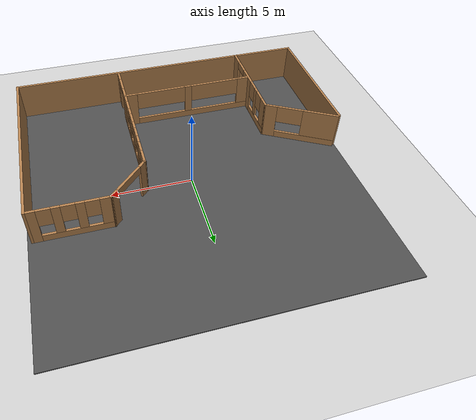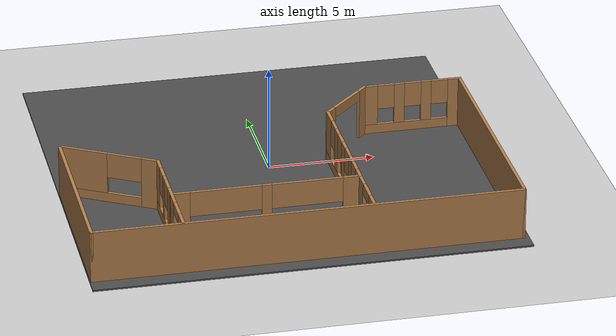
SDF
<sdf version="1.6">
 <world name="default">
  <model name="ground_plane">
   <static>1</static>
   <link name="link">
    <collision name="collision">
     <geometry><plane><normal>0 0 1</normal><size>100 100</size></plane></geometry>
     <surface><friction><ode><mu>100</mu><mu2>50</mu2></ode></friction></surface>
    </collision>
    <visual name="visual">
     <cast_shadows>0</cast_shadows>
     <geometry><plane><normal>0 0 1</normal><size>100 100</size></plane></geometry>
     <material>
      <script><uri>file://media/materials/scripts/gazebo.material</uri><name>Gazebo/Grey</name></script>
     </material>
    </visual>
   </link>
  </model>
  <model name="Robocup">
   <pose>-0.0925 -3.37243 0 0 -0 0</pose>
   <link name="Wall_13">
    <collision name="Wall_13_Collision">
     <geometry><box><size>8.5 0.15 2.5</size></box></geometry>
     <pose>0 0 1.25 0 -0 0</pose>
    </collision>
    <visual name="Wall_13_Visual">
     <pose>0 0 1.25 0 -0 0</pose>
     <geometry><box><size>8.5 0.15 2.5</size></box></geometry>
     <material>
      <script><uri>file://media/materials/scripts/gazebo.material</uri><name>Gazebo/Wood</name></script>
      <ambient>1 1 1 1</ambient>
     </material>
     <meta><layer>0</layer></meta>
    </visual>
    <pose>-9.8 -1.64053 0 0 0 -1.5708</pose>
   </link>
   <link name="Wall_15">
    <collision name="Wall_15_Collision">
     <geometry><box><size>19.75 0.15 2.5</size></box></geometry>
     <pose>0 0 1.25 0 -0 0</pose>
    </collision>
    <visual name="Wall_15_Visual">
     <pose>0 0 1.25 0 -0 0</pose>
     <geometry><box><size>19.75 0.15 2.5</size></box></geometry>
     <material>
      <script><uri>file://media/materials/scripts/gazebo.material</uri><name>Gazebo/Wood</name></script>
      <ambient>1 1 1 1</ambient>
     </material>
     <meta><layer>0</layer></meta>
    </visual>
    <pose>0 -5.81553 0 0 -0 0</pose>
   </link>
   <link name="Wall_17">
    <collision name="Wall_17_Collision">
     <geometry><box><size>11.75 0.15 2.5</size></box></geometry>
     <pose>0 0 1.25 0 -0 0</pose>
    </collision>
    <visual name="Wall_17_Visual">
     <pose>0 0 1.25 0 -0 0</pose>
     <geometry><box><size>11.75 0.15 2.5</size></box></geometry>
     <material>
      <script><uri>file://media/materials/scripts/gazebo.material</uri><name>Gazebo/Wood</name></script>
      <ambient>1 1 1 1</ambient>
     </material>
     <meta><layer>0</layer></meta>
    </visual>
    <pose>9.8 -0.015532 0 0 -0 1.5708</pose>
   </link>
   <link name="Wall_18">
    <pose>7.5 5.78447 0 0 -0 3.14159</pose>
    <visual name="Wall_18_Visual_0">
     <pose>-2.04757 0 1.25 0 -0 0</pose>
     <geometry><box><size>0.654861 0.15 2.5</size></box></geometry>
     <material>
      <script><uri>file://media/materials/scripts/gazebo.material</uri><name>Gazebo/Wood</name></script>
      <ambient>1 1 1 1</ambient>
     </material>
     <meta><layer>0</layer></meta>
    </visual>
    <collision name="Wall_18_Collision_0">
     <geometry><box><size>0.654861 0.15 2.5</size></box></geometry>
     <pose>-2.04757 0 1.25 0 -0 0</pose>
    </collision>
    <visual name="Wall_18_Visual_1">
     <pose>0.327431 0 0.25 0 -0 0</pose>
     <geometry><box><size>4.09514 0.15 0.5</size></box></geometry>
     <material>
      <script><uri>file://media/materials/scripts/gazebo.material</uri><name>Gazebo/Wood</name></script>
      <ambient>1 1 1 1</ambient>
     </material>
     <meta><layer>0</layer></meta>
    </visual>
    <collision name="Wall_18_Collision_1">
     <geometry><box><size>4.09514 0.15 0.5</size></box></geometry>
     <pose>0.327431 0 0.25 0 -0 0</pose>
    </collision>
    <visual name="Wall_18_Visual_2">
     <pose>-0.672482 0 1.5 0 -0 0</pose>
     <geometry><box><size>0.495314 0.15 2</size></box></geometry>
     <material>
      <script><uri>file://media/materials/scripts/gazebo.material</uri><name>Gazebo/Wood</name></script>
      <ambient>1 1 1 1</ambient>
     </material>
     <meta><layer>0</layer></meta>
    </visual>
    <collision name="Wall_18_Collision_2">
     <geometry><box><size>0.495314 0.15 2</size></box></geometry>
     <pose>-0.672482 0 1.5 0 -0 0</pose>
    </collision>
    <visual name="Wall_18_Visual_3">
     <pose>0.622832 0 1.5 0 -0 0</pose>
     <geometry><box><size>0.495314 0.15 2</size></box></geometry>
     <material>
      <script><uri>file://media/materials/scripts/gazebo.material</uri><name>Gazebo/Wood</name></script>
      <ambient>1 1 1 1</ambient>
     </material>
     <meta><layer>0</layer></meta>
    </visual>
    <collision name="Wall_18_Collision_3">
     <geometry><box><size>0.495314 0.15 2</size></box></geometry>
     <pose>0.622832 0 1.5 0 -0 0</pose>
    </collision>
    <visual name="Wall_18_Visual_4">
     <pose>2.02275 0 1.5 0 -0 0</pose>
     <geometry><box><size>0.704511 0.15 2</size></box></geometry>
     <material>
      <script><uri>file://media/materials/scripts/gazebo.material</uri><name>Gazebo/Wood</name></script>
      <ambient>1 1 1 1</ambient>
     </material>
     <meta><layer>0</layer></meta>
    </visual>
    <collision name="Wall_18_Collision_4">
     <geometry><box><size>0.704511 0.15 2</size></box></geometry>
     <pose>2.02275 0 1.5 0 -0 0</pose>
    </collision>
    <visual name="Wall_18_Visual_5">
     <pose>-1.32014 0 1.9 0 -0 0</pose>
     <geometry><box><size>0.8 0.15 1.2</size></box></geometry>
     <material>
      <script><uri>file://media/materials/scripts/gazebo.material</uri><name>Gazebo/Wood</name></script>
      <ambient>1 1 1 1</ambient>
     </material>
     <meta><layer>0</layer></meta>
    </visual>
    <collision name="Wall_18_Collision_5">
     <geometry><box><size>0.8 0.15 1.2</size></box></geometry>
     <pose>-1.32014 0 1.9 0 -0 0</pose>
    </collision>
    <visual name="Wall_18_Visual_6">
     <pose>-0.024825 0 1.9 0 -0 0</pose>
     <geometry><box><size>0.8 0.15 1.2</size></box></geometry>
     <material>
      <script><uri>file://media/materials/scripts/gazebo.material</uri><name>Gazebo/Wood</name></script>
      <ambient>1 1 1 1</ambient>
     </material>
     <meta><layer>0</layer></meta>
    </visual>
    <collision name="Wall_18_Collision_6">
     <geometry><box><size>0.8 0.15 1.2</size></box></geometry>
     <pose>-0.024825 0 1.9 0 -0 0</pose>
    </collision>
    <visual name="Wall_18_Visual_7">
     <pose>1.27049 0 1.9 0 -0 0</pose>
     <geometry><box><size>0.8 0.15 1.2</size></box></geometry>
     <material>
      <script><uri>file://media/materials/scripts/gazebo.material</uri><name>Gazebo/Wood</name></script>
      <ambient>1 1 1 1</ambient>
     </material>
     <meta><layer>0</layer></meta>
    </visual>
    <collision name="Wall_18_Collision_7">
     <geometry><box><size>0.8 0.15 1.2</size></box></geometry>
     <pose>1.27049 0 1.9 0 -0 0</pose>
    </collision>
   </link>
   <link name="Wall_22">
    <pose>-1.38838 -2.99714 0 0 -0 3.14159</pose>
    <visual name="Wall_22_Visual_0">
     <pose>-3.95278 0 1.25 0 -0 0</pose>
     <geometry><box><size>0.844442 0.15 2.5</size></box></geometry>
     <material>
      <script><uri>file://media/materials/scripts/gazebo.material</uri><name>Gazebo/Wood</name></script>
      <ambient>1 1 1 1</ambient>
     </material>
     <meta><layer>0</layer></meta>
    </visual>
    <collision name="Wall_22_Collision_0">
     <geometry><box><size>0.844442 0.15 2.5</size></box></geometry>
     <pose>-3.95278 0 1.25 0 -0 0</pose>
    </collision>
    <visual name="Wall_22_Visual_1">
     <pose>0.422221 0 0.25 0 -0 0</pose>
     <geometry><box><size>7.90556 0.15 0.5</size></box></geometry>
     <material>
      <script><uri>file://media/materials/scripts/gazebo.material</uri><name>Gazebo/Wood</name></script>
      <ambient>1 1 1 1</ambient>
     </material>
     <meta><layer>0</layer></meta>
    </visual>
    <collision name="Wall_22_Collision_1">
     <geometry><box><size>7.90556 0.15 0.5</size></box></geometry>
     <pose>0.422221 0 0.25 0 -0 0</pose>
    </collision>
    <visual name="Wall_22_Visual_2">
     <pose>-0.031057 0 1.5 0 -0 0</pose>
     <geometry><box><size>0.449053 0.15 2</size></box></geometry>
     <material>
      <script><uri>file://media/materials/scripts/gazebo.material</uri><name>Gazebo/Wood</name></script>
      <ambient>1 1 1 1</ambient>
     </material>
     <meta><layer>0</layer></meta>
    </visual>
    <collision name="Wall_22_Collision_2">
     <geometry><box><size>0.449053 0.15 2</size></box></geometry>
     <pose>-0.031057 0 1.5 0 -0 0</pose>
    </collision>
    <visual name="Wall_22_Visual_3">
     <pose>3.92172 0 1.5 0 -0 0</pose>
     <geometry><box><size>0.906555 0.15 2</size></box></geometry>
     <material>
      <script><uri>file://media/materials/scripts/gazebo.material</uri><name>Gazebo/Wood</name></script>
      <ambient>1 1 1 1</ambient>
     </material>
     <meta><layer>0</layer></meta>
    </visual>
    <collision name="Wall_22_Collision_3">
     <geometry><box><size>0.906555 0.15 2</size></box></geometry>
     <pose>3.92172 0 1.5 0 -0 0</pose>
    </collision>
    <visual name="Wall_22_Visual_4">
     <pose>-1.89307 0 1.9 0 -0 0</pose>
     <geometry><box><size>3.27497 0.15 1.2</size></box></geometry>
     <material>
      <script><uri>file://media/materials/scripts/gazebo.material</uri><name>Gazebo/Wood</name></script>
      <ambient>1 1 1 1</ambient>
     </material>
     <meta><layer>0</layer></meta>
    </visual>
    <collision name="Wall_22_Collision_4">
     <geometry><box><size>3.27497 0.15 1.2</size></box></geometry>
     <pose>-1.89307 0 1.9 0 -0 0</pose>
    </collision>
    <visual name="Wall_22_Visual_5">
     <pose>1.83096 0 1.9 0 -0 0</pose>
     <geometry><box><size>3.27497 0.15 1.2</size></box></geometry>
     <material>
      <script><uri>file://media/materials/scripts/gazebo.material</uri><name>Gazebo/Wood</name></script>
      <ambient>1 1 1 1</ambient>
     </material>
     <meta><layer>0</layer></meta>
    </visual>
    <collision name="Wall_22_Collision_5">
     <geometry><box><size>3.27497 0.15 1.2</size></box></geometry>
     <pose>1.83096 0 1.9 0 -0 0</pose>
    </collision>
   </link>
   <link name="Wall_26">
    <pose>2.93475 0.272603 0 0 -0 1.5708</pose>
    <visual name="Wall_26_Visual_0">
     <pose>-2.98586 0 1.25 0 -0 0</pose>
     <geometry><box><size>0.718408 0.15 2.5</size></box></geometry>
     <material>
      <script><uri>file://media/materials/scripts/gazebo.material</uri><name>Gazebo/Wood</name></script>
      <ambient>1 1 1 1</ambient>
     </material>
     <meta><layer>0</layer></meta>
    </visual>
    <collision name="Wall_26_Collision_0">
     <geometry><box><size>0.718408 0.15 2.5</size></box></geometry>
     <pose>-2.98586 0 1.25 0 -0 0</pose>
    </collision>
    <visual name="Wall_26_Visual_1">
     <pose>0.359204 0 0.25 0 -0 0</pose>
     <geometry><box><size>5.97173 0.15 0.5</size></box></geometry>
     <material>
      <script><uri>file://media/materials/scripts/gazebo.material</uri><name>Gazebo/Wood</name></script>
      <ambient>1 1 1 1</ambient>
     </material>
     <meta><layer>0</layer></meta>
    </visual>
    <collision name="Wall_26_Collision_1">
     <geometry><box><size>5.97173 0.15 0.5</size></box></geometry>
     <pose>0.359204 0 0.25 0 -0 0</pose>
    </collision>
    <visual name="Wall_26_Visual_2">
     <pose>-1.54474 0 1.5 0 -0 0</pose>
     <geometry><box><size>0.563839 0.15 2</size></box></geometry>
     <material>
      <script><uri>file://media/materials/scripts/gazebo.material</uri><name>Gazebo/Wood</name></script>
      <ambient>1 1 1 1</ambient>
     </material>
     <meta><layer>0</layer></meta>
    </visual>
    <collision name="Wall_26_Collision_2">
     <geometry><box><size>0.563839 0.15 2</size></box></geometry>
     <pose>-1.54474 0 1.5 0 -0 0</pose>
    </collision>
    <visual name="Wall_26_Visual_3">
     <pose>-0.156104 0 1.5 0 -0 0</pose>
     <geometry><box><size>0.613433 0.15 2</size></box></geometry>
     <material>
      <script><uri>file://media/materials/scripts/gazebo.material</uri><name>Gazebo/Wood</name></script>
      <ambient>1 1 1 1</ambient>
     </material>
     <meta><layer>0</layer></meta>
    </visual>
    <collision name="Wall_26_Collision_3">
     <geometry><box><size>0.613433 0.15 2</size></box></geometry>
     <pose>-0.156104 0 1.5 0 -0 0</pose>
    </collision>
    <visual name="Wall_26_Visual_4">
     <pose>1.23253 0 1.5 0 -0 0</pose>
     <geometry><box><size>0.563839 0.15 2</size></box></geometry>
     <material>
      <script><uri>file://media/materials/scripts/gazebo.material</uri><name>Gazebo/Wood</name></script>
      <ambient>1 1 1 1</ambient>
     </material>
     <meta><layer>0</layer></meta>
    </visual>
    <collision name="Wall_26_Collision_4">
     <geometry><box><size>0.563839 0.15 2</size></box></geometry>
     <pose>1.23253 0 1.5 0 -0 0</pose>
    </collision>
    <visual name="Wall_26_Visual_5">
     <pose>2.82976 0 1.5 0 -0 0</pose>
     <geometry><box><size>1.03062 0.15 2</size></box></geometry>
     <material>
      <script><uri>file://media/materials/scripts/gazebo.material</uri><name>Gazebo/Wood</name></script>
      <ambient>1 1 1 1</ambient>
     </material>
     <meta><layer>0</layer></meta>
    </visual>
    <collision name="Wall_26_Collision_5">
     <geometry><box><size>1.03062 0.15 2</size></box></geometry>
     <pose>2.82976 0 1.5 0 -0 0</pose>
    </collision>
    <visual name="Wall_26_Visual_6">
     <pose>-2.22666 0 1.9 0 -0 0</pose>
     <geometry><box><size>0.8 0.15 1.2</size></box></geometry>
     <material>
      <script><uri>file://media/materials/scripts/gazebo.material</uri><name>Gazebo/Wood</name></script>
      <ambient>1 1 1 1</ambient>
     </material>
     <meta><layer>0</layer></meta>
    </visual>
    <collision name="Wall_26_Collision_6">
     <geometry><box><size>0.8 0.15 1.2</size></box></geometry>
     <pose>-2.22666 0 1.9 0 -0 0</pose>
    </collision>
    <visual name="Wall_26_Visual_7">
     <pose>-0.862821 0 1.9 0 -0 0</pose>
     <geometry><box><size>0.8 0.15 1.2</size></box></geometry>
     <material>
      <script><uri>file://media/materials/scripts/gazebo.material</uri><name>Gazebo/Wood</name></script>
      <ambient>1 1 1 1</ambient>
     </material>
     <meta><layer>0</layer></meta>
    </visual>
    <collision name="Wall_26_Collision_7">
     <geometry><box><size>0.8 0.15 1.2</size></box></geometry>
     <pose>-0.862821 0 1.9 0 -0 0</pose>
    </collision>
    <visual name="Wall_26_Visual_8">
     <pose>0.550613 0 1.9 0 -0 0</pose>
     <geometry><box><size>0.8 0.15 1.2</size></box></geometry>
     <material>
      <script><uri>file://media/materials/scripts/gazebo.material</uri><name>Gazebo/Wood</name></script>
      <ambient>1 1 1 1</ambient>
     </material>
     <meta><layer>0</layer></meta>
    </visual>
    <collision name="Wall_26_Collision_8">
     <geometry><box><size>0.8 0.15 1.2</size></box></geometry>
     <pose>0.550613 0 1.9 0 -0 0</pose>
    </collision>
    <visual name="Wall_26_Visual_9">
     <pose>1.91445 0 1.9 0 -0 0</pose>
     <geometry><box><size>0.8 0.15 1.2</size></box></geometry>
     <material>
      <script><uri>file://media/materials/scripts/gazebo.material</uri><name>Gazebo/Wood</name></script>
      <ambient>1 1 1 1</ambient>
     </material>
     <meta><layer>0</layer></meta>
    </visual>
    <collision name="Wall_26_Collision_9">
     <geometry><box><size>0.8 0.15 1.2</size></box></geometry>
     <pose>1.91445 0 1.9 0 -0 0</pose>
    </collision>
   </link>
   <link name="Wall_30">
    <pose>4.06737 4.66341 0 0 -0 0.780266</pose>
    <visual name="Wall_30_Visual_0">
     <pose>-1.36338 0 1.25 0 -0 0</pose>
     <geometry><box><size>0.610486 0.15 2.5</size></box></geometry>
     <material>
      <script><uri>file://media/materials/scripts/gazebo.material</uri><name>Gazebo/Wood</name></script>
      <ambient>1 1 1 1</ambient>
     </material>
     <meta><layer>0</layer></meta>
    </visual>
    <collision name="Wall_30_Collision_0">
     <geometry><box><size>0.610486 0.15 2.5</size></box></geometry>
     <pose>-1.36338 0 1.25 0 -0 0</pose>
    </collision>
    <visual name="Wall_30_Visual_1">
     <pose>1.36124 0 1.25 0 -0 0</pose>
     <geometry><box><size>0.614761 0.15 2.5</size></box></geometry>
     <material>
      <script><uri>file://media/materials/scripts/gazebo.material</uri><name>Gazebo/Wood</name></script>
      <ambient>1 1 1 1</ambient>
     </material>
     <meta><layer>0</layer></meta>
    </visual>
    <collision name="Wall_30_Collision_1">
     <geometry><box><size>0.614761 0.15 2.5</size></box></geometry>
     <pose>1.36124 0 1.25 0 -0 0</pose>
    </collision>
    <visual name="Wall_30_Visual_2">
     <pose>-0.002137 0 2.25 0 -0 0</pose>
     <geometry><box><size>2.11199 0.15 0.5</size></box></geometry>
     <material>
      <script><uri>file://media/materials/scripts/gazebo.material</uri><name>Gazebo/Wood</name></script>
      <ambient>1 1 1 1</ambient>
     </material>
     <meta><layer>0</layer></meta>
    </visual>
    <collision name="Wall_30_Collision_2">
     <geometry><box><size>2.11199 0.15 0.5</size></box></geometry>
     <pose>-0.002137 0 2.25 0 -0 0</pose>
    </collision>
   </link>
   <link name="Wall_32">
    <pose>2.93475 -4.3274 0 0 0 -1.5708</pose>
    <visual name="Wall_32_Visual_0">
     <pose>-0.946076 0 1.25 0 -0 0</pose>
     <geometry><box><size>0.919271 0.15 2.5</size></box></geometry>
     <material>
      <script><uri>file://media/materials/scripts/gazebo.material</uri><name>Gazebo/Wood</name></script>
      <ambient>1 1 1 1</ambient>
     </material>
     <meta><layer>0</layer></meta>
    </visual>
    <collision name="Wall_32_Collision_0">
     <geometry><box><size>0.919271 0.15 2.5</size></box></geometry>
     <pose>-0.946076 0 1.25 0 -0 0</pose>
    </collision>
    <visual name="Wall_32_Visual_1">
     <pose>1.02529 0 1.25 0 -0 0</pose>
     <geometry><box><size>0.760846 0.15 2.5</size></box></geometry>
     <material>
      <script><uri>file://media/materials/scripts/gazebo.material</uri><name>Gazebo/Wood</name></script>
      <ambient>1 1 1 1</ambient>
     </material>
     <meta><layer>0</layer></meta>
    </visual>
    <collision name="Wall_32_Collision_1">
     <geometry><box><size>0.760846 0.15 2.5</size></box></geometry>
     <pose>1.02529 0 1.25 0 -0 0</pose>
    </collision>
    <visual name="Wall_32_Visual_2">
     <pose>0.079212 0 2.25 0 -0 0</pose>
     <geometry><box><size>1.13131 0.15 0.5</size></box></geometry>
     <material>
      <script><uri>file://media/materials/scripts/gazebo.material</uri><name>Gazebo/Wood</name></script>
      <ambient>1 1 1 1</ambient>
     </material>
     <meta><layer>0</layer></meta>
    </visual>
    <collision name="Wall_32_Collision_2">
     <geometry><box><size>1.13131 0.15 0.5</size></box></geometry>
     <pose>0.079212 0 2.25 0 -0 0</pose>
    </collision>
   </link>
   <link name="Wall_36">
    <pose>-5.68275 -2.74444 0 0 -0 1.5708</pose>
    <visual name="Wall_36_Visual_0">
     <pose>-2.6475 0 1.25 0 -0 0</pose>
     <geometry><box><size>0.95501 0.15 2.5</size></box></geometry>
     <material>
      <script><uri>file://media/materials/scripts/gazebo.material</uri><name>Gazebo/Wood</name></script>
      <ambient>1 1 1 1</ambient>
     </material>
     <meta><layer>0</layer></meta>
    </visual>
    <collision name="Wall_36_Collision_0">
     <geometry><box><size>0.95501 0.15 2.5</size></box></geometry>
     <pose>-2.6475 0 1.25 0 -0 0</pose>
    </collision>
    <visual name="Wall_36_Visual_1">
     <pose>-0.370763 0 1.25 0 -0 0</pose>
     <geometry><box><size>1.42837 0.15 2.5</size></box></geometry>
     <material>
      <script><uri>file://media/materials/scripts/gazebo.material</uri><name>Gazebo/Wood</name></script>
      <ambient>1 1 1 1</ambient>
     </material>
     <meta><layer>0</layer></meta>
    </visual>
    <collision name="Wall_36_Collision_1">
     <geometry><box><size>1.42837 0.15 2.5</size></box></geometry>
     <pose>-0.370763 0 1.25 0 -0 0</pose>
    </collision>
    <visual name="Wall_36_Visual_2">
     <pose>1.73421 0 0.25 0 -0 0</pose>
     <geometry><box><size>2.78158 0.15 0.5</size></box></geometry>
     <material>
      <script><uri>file://media/materials/scripts/gazebo.material</uri><name>Gazebo/Wood</name></script>
      <ambient>1 1 1 1</ambient>
     </material>
     <meta><layer>0</layer></meta>
    </visual>
    <collision name="Wall_36_Collision_2">
     <geometry><box><size>2.78158 0.15 0.5</size></box></geometry>
     <pose>1.73421 0 0.25 0 -0 0</pose>
    </collision>
    <visual name="Wall_36_Visual_3">
     <pose>1.33325 0 1.5 0 -0 0</pose>
     <geometry><box><size>0.379661 0.15 2</size></box></geometry>
     <material>
      <script><uri>file://media/materials/scripts/gazebo.material</uri><name>Gazebo/Wood</name></script>
      <ambient>1 1 1 1</ambient>
     </material>
     <meta><layer>0</layer></meta>
    </visual>
    <collision name="Wall_36_Collision_3">
     <geometry><box><size>0.379661 0.15 2</size></box></geometry>
     <pose>1.33325 0 1.5 0 -0 0</pose>
    </collision>
    <visual name="Wall_36_Visual_4">
     <pose>2.72404 0 1.5 0 -0 0</pose>
     <geometry><box><size>0.801919 0.15 2</size></box></geometry>
     <material>
      <script><uri>file://media/materials/scripts/gazebo.material</uri><name>Gazebo/Wood</name></script>
      <ambient>1 1 1 1</ambient>
     </material>
     <meta><layer>0</layer></meta>
    </visual>
    <collision name="Wall_36_Collision_4">
     <geometry><box><size>0.801919 0.15 2</size></box></geometry>
     <pose>2.72404 0 1.5 0 -0 0</pose>
    </collision>
    <visual name="Wall_36_Visual_5">
     <pose>0.74342 0 1.9 0 -0 0</pose>
     <geometry><box><size>0.8 0.15 1.2</size></box></geometry>
     <material>
      <script><uri>file://media/materials/scripts/gazebo.material</uri><name>Gazebo/Wood</name></script>
      <ambient>1 1 1 1</ambient>
     </material>
     <meta><layer>0</layer></meta>
    </visual>
    <collision name="Wall_36_Collision_5">
     <geometry><box><size>0.8 0.15 1.2</size></box></geometry>
     <pose>0.74342 0 1.9 0 -0 0</pose>
    </collision>
    <visual name="Wall_36_Visual_6">
     <pose>1.92308 0 1.9 0 -0 0</pose>
     <geometry><box><size>0.8 0.15 1.2</size></box></geometry>
     <material>
      <script><uri>file://media/materials/scripts/gazebo.material</uri><name>Gazebo/Wood</name></script>
      <ambient>1 1 1 1</ambient>
     </material>
     <meta><layer>0</layer></meta>
    </visual>
    <collision name="Wall_36_Collision_6">
     <geometry><box><size>0.8 0.15 1.2</size></box></geometry>
     <pose>1.92308 0 1.9 0 -0 0</pose>
    </collision>
    <visual name="Wall_36_Visual_7">
     <pose>-1.62747 0 2.25 0 -0 0</pose>
     <geometry><box><size>1.08505 0.15 0.5</size></box></geometry>
     <material>
      <script><uri>file://media/materials/scripts/gazebo.material</uri><name>Gazebo/Wood</name></script>
      <ambient>1 1 1 1</ambient>
     </material>
     <meta><layer>0</layer></meta>
    </visual>
    <collision name="Wall_36_Collision_7">
     <geometry><box><size>1.08505 0.15 0.5</size></box></geometry>
     <pose>-1.62747 0 2.25 0 -0 0</pose>
    </collision>
   </link>
   <link name="Wall_37">
    <pose>-7.67461 1.45555 0 0 -0 2.61799</pose>
    <visual name="Wall_37_Visual_0">
     <pose>-1.9437 0 1.25 0 -0 0</pose>
     <geometry><box><size>0.862601 0.15 2.5</size></box></geometry>
     <material>
      <script><uri>file://media/materials/scripts/gazebo.material</uri><name>Gazebo/Wood</name></script>
      <ambient>1 1 1 1</ambient>
     </material>
     <meta><layer>0</layer></meta>
    </visual>
    <collision name="Wall_37_Collision_0">
     <geometry><box><size>0.862601 0.15 2.5</size></box></geometry>
     <pose>-1.9437 0 1.25 0 -0 0</pose>
    </collision>
    <visual name="Wall_37_Visual_1">
     <pose>0.431301 0 0.25 0 -0 0</pose>
     <geometry><box><size>3.8874 0.15 0.5</size></box></geometry>
     <material>
      <script><uri>file://media/materials/scripts/gazebo.material</uri><name>Gazebo/Wood</name></script>
      <ambient>1 1 1 1</ambient>
     </material>
     <meta><layer>0</layer></meta>
    </visual>
    <collision name="Wall_37_Collision_1">
     <geometry><box><size>3.8874 0.15 0.5</size></box></geometry>
     <pose>0.431301 0 0.25 0 -0 0</pose>
    </collision>
    <visual name="Wall_37_Visual_2">
     <pose>1.25518 0 1.5 0 -0 0</pose>
     <geometry><box><size>2.23965 0.15 2</size></box></geometry>
     <material>
      <script><uri>file://media/materials/scripts/gazebo.material</uri><name>Gazebo/Wood</name></script>
      <ambient>1 1 1 1</ambient>
     </material>
     <meta><layer>0</layer></meta>
    </visual>
    <collision name="Wall_37_Collision_2">
     <geometry><box><size>2.23965 0.15 2</size></box></geometry>
     <pose>1.25518 0 1.5 0 -0 0</pose>
    </collision>
    <visual name="Wall_37_Visual_3">
     <pose>-0.688523 0 1.9 0 -0 0</pose>
     <geometry><box><size>1.64775 0.15 1.2</size></box></geometry>
     <material>
      <script><uri>file://media/materials/scripts/gazebo.material</uri><name>Gazebo/Wood</name></script>
      <ambient>1 1 1 1</ambient>
     </material>
     <meta><layer>0</layer></meta>
    </visual>
    <collision name="Wall_37_Collision_3">
     <geometry><box><size>1.64775 0.15 1.2</size></box></geometry>
     <pose>-0.688523 0 1.9 0 -0 0</pose>
    </collision>
   </link>
   <static>1</static>
  </model>
  <model name="asphalt_plane">
   <static>1</static>
   <link name="link">
    <collision name="collision"><geometry><box><size>20 20 0.1</size></box></geometry></collision>
    <visual name="visual">
     <cast_shadows>0</cast_shadows>
     <geometry><box><size>20 20 0.1</size></box></geometry>
     <material>
      <script>
       <uri>model://asphalt_plane/materials/scripts</uri>
       <uri>model://asphalt_plane/materials/textures</uri>
       <name>vrc/asphalt</name>
      </script>
     </material>
    </visual>
   </link>
  </model>
 </world>
</sdf>
